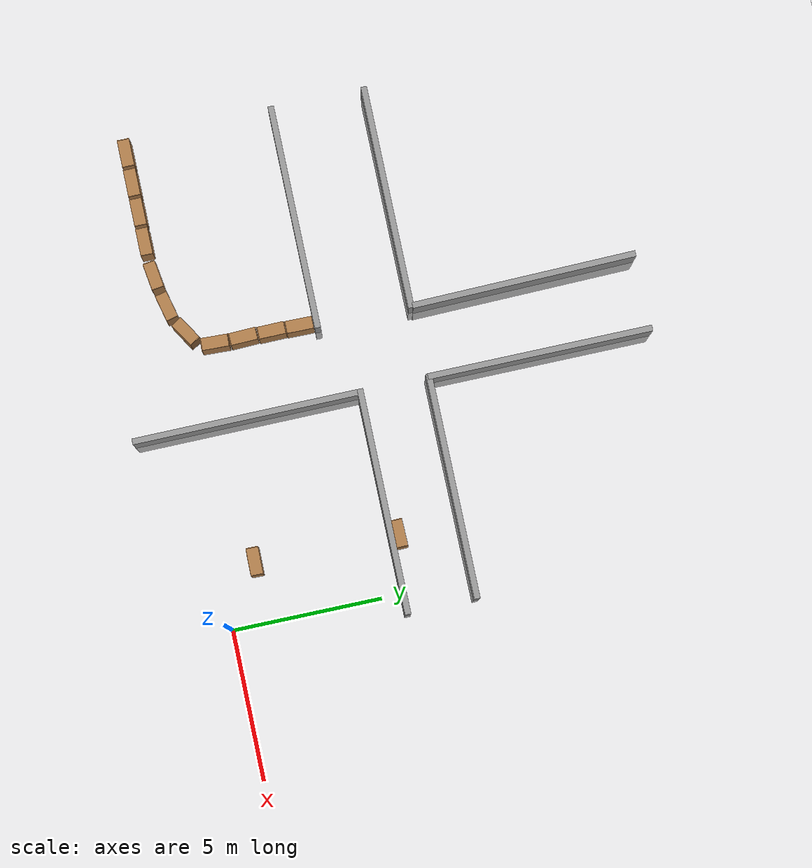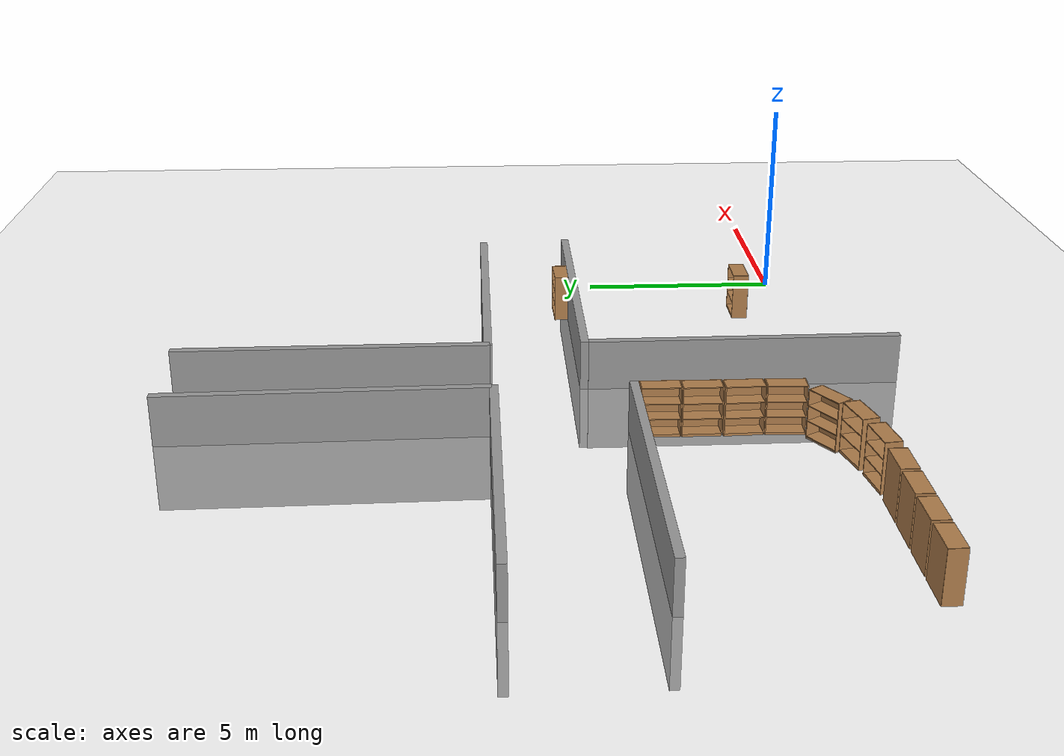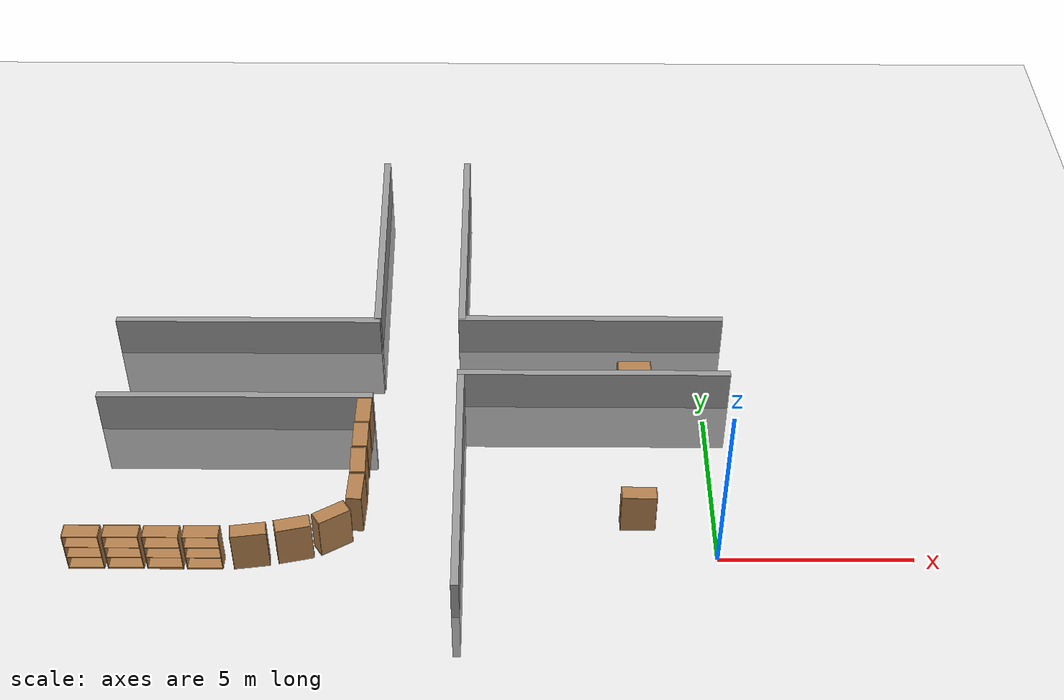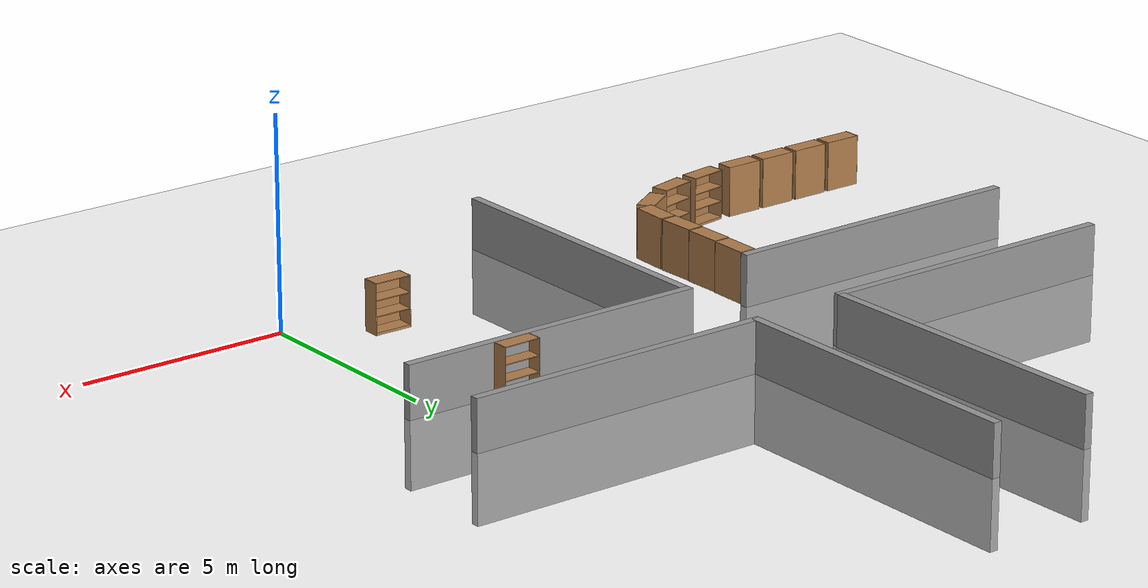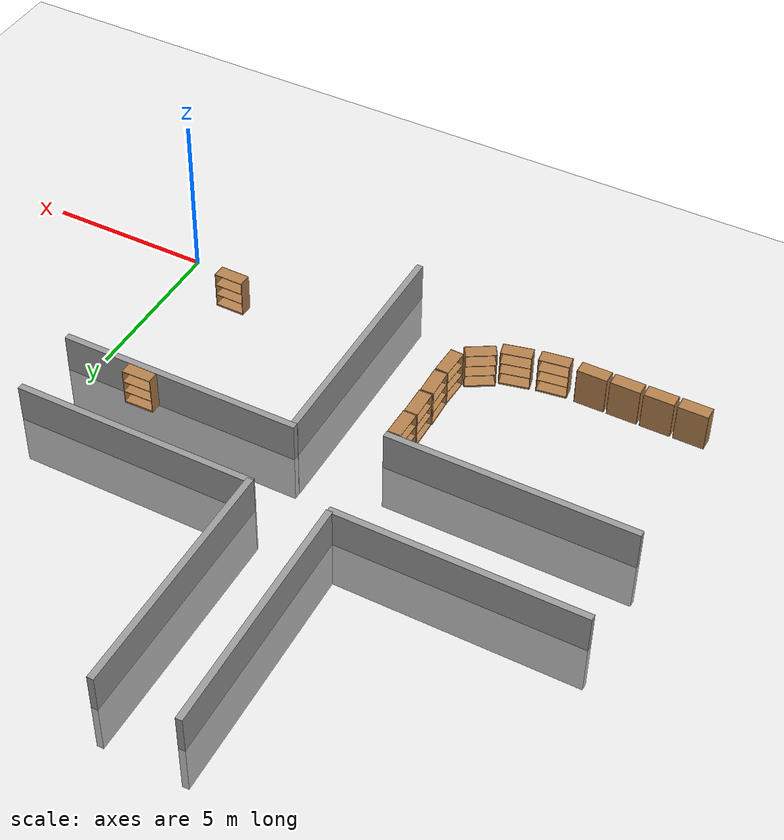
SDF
<sdf version="1.4">
 <world name="default">
  <model name="ground_plane">
   <static>1</static>
   <link name="link">
    <collision name="collision">
     <geometry><plane><normal>0 0 1</normal><size>100 100</size></plane></geometry>
     <surface><friction><ode><mu>100</mu><mu2>50</mu2></ode></friction></surface>
    </collision>
    <visual name="visual">
     <cast_shadows>0</cast_shadows>
     <geometry><plane><normal>0 0 1</normal><size>100 100</size></plane></geometry>
     <material>
      <script><uri>file://media/materials/scripts/gazebo.material</uri><name>Gazebo/Grey</name></script>
     </material>
    </visual>
    <velocity_decay><linear>0</linear><angular>0</angular></velocity_decay>
   </link>
  </model>
  <model name="bookshelf_10">
   <static>1</static>
   <link name="link">
    <inertial><mass>1</mass></inertial>
    <collision name="back">
     <pose>0 0.005 0.6 0 -0 0</pose>
     <geometry><box><size>0.9 0.01 1.2</size></box></geometry>
    </collision>
    <visual name="visual1">
     <pose>0 0.005 0.6 0 -0 0</pose>
     <geometry><box><size>0.9 0.01 1.2</size></box></geometry>
     <material>
      <script><uri>file://media/materials/scripts/gazebo.material</uri><name>Gazebo/Wood</name></script>
     </material>
    </visual>
    <collision name="left_side">
     <pose>0.45 -0.195 0.6 0 -0 0</pose>
     <geometry><box><size>0.02 0.4 1.2</size></box></geometry>
    </collision>
    <visual name="visual2">
     <pose>0.45 -0.195 0.6 0 -0 0</pose>
     <geometry><box><size>0.02 0.4 1.2</size></box></geometry>
     <material>
      <script><uri>file://media/materials/scripts/gazebo.material</uri><name>Gazebo/Wood</name></script>
     </material>
    </visual>
    <collision name="right_side">
     <pose>-0.45 -0.195 0.6 0 -0 0</pose>
     <geometry><box><size>0.02 0.4 1.2</size></box></geometry>
    </collision>
    <visual name="visual3">
     <pose>-0.45 -0.195 0.6 0 -0 0</pose>
     <geometry><box><size>0.02 0.4 1.2</size></box></geometry>
     <material>
      <script><uri>file://media/materials/scripts/gazebo.material</uri><name>Gazebo/Wood</name></script>
     </material>
    </visual>
    <collision name="bottom">
     <pose>0 -0.195 0.03 0 -0 0</pose>
     <geometry><box><size>0.88 0.4 0.06</size></box></geometry>
    </collision>
    <visual name="visual4">
     <pose>0 -0.195 0.03 0 -0 0</pose>
     <geometry><box><size>0.88 0.4 0.06</size></box></geometry>
     <material>
      <script><uri>file://media/materials/scripts/gazebo.material</uri><name>Gazebo/Wood</name></script>
     </material>
    </visual>
    <collision name="top">
     <pose>0 -0.195 1.19 0 -0 0</pose>
     <geometry><box><size>0.88 0.4 0.02</size></box></geometry>
    </collision>
    <visual name="visual5">
     <pose>0 -0.195 1.19 0 -0 0</pose>
     <geometry><box><size>0.88 0.4 0.02</size></box></geometry>
     <material>
      <script><uri>file://media/materials/scripts/gazebo.material</uri><name>Gazebo/Wood</name></script>
     </material>
    </visual>
    <collision name="low_shelf">
     <pose>0 -0.195 0.43 0 -0 0</pose>
     <geometry><box><size>0.88 0.4 0.02</size></box></geometry>
    </collision>
    <visual name="visual6">
     <pose>0 -0.195 0.43 0 -0 0</pose>
     <geometry><box><size>0.88 0.4 0.02</size></box></geometry>
     <material>
      <script><uri>file://media/materials/scripts/gazebo.material</uri><name>Gazebo/Wood</name></script>
     </material>
    </visual>
    <collision name="high_shelf">
     <pose>0 -0.195 0.8 0 -0 0</pose>
     <geometry><box><size>0.88 0.4 0.02</size></box></geometry>
    </collision>
    <visual name="visual7">
     <pose>0 -0.195 0.8 0 -0 0</pose>
     <geometry><box><size>0.88 0.4 0.02</size></box></geometry>
     <material>
      <script><uri>file://media/materials/scripts/gazebo.material</uri><name>Gazebo/Wood</name></script>
     </material>
    </visual>
    <velocity_decay><linear>0</linear><angular>0</angular></velocity_decay>
   </link>
   <pose>-2 1 0 0 -0 3.12895</pose>
  </model>
  <model name="bookshelf_22">
   <static>1</static>
   <link name="link">
    <inertial><mass>1</mass></inertial>
    <collision name="back">
     <pose>0 0.005 0.6 0 -0 0</pose>
     <geometry><box><size>0.9 0.01 1.2</size></box></geometry>
    </collision>
    <visual name="visual1">
     <pose>0 0.005 0.6 0 -0 0</pose>
     <geometry><box><size>0.9 0.01 1.2</size></box></geometry>
     <material>
      <script><uri>file://media/materials/scripts/gazebo.material</uri><name>Gazebo/Wood</name></script>
     </material>
    </visual>
    <collision name="left_side">
     <pose>0.45 -0.195 0.6 0 -0 0</pose>
     <geometry><box><size>0.02 0.4 1.2</size></box></geometry>
    </collision>
    <visual name="visual2">
     <pose>0.45 -0.195 0.6 0 -0 0</pose>
     <geometry><box><size>0.02 0.4 1.2</size></box></geometry>
     <material>
      <script><uri>file://media/materials/scripts/gazebo.material</uri><name>Gazebo/Wood</name></script>
     </material>
    </visual>
    <collision name="right_side">
     <pose>-0.45 -0.195 0.6 0 -0 0</pose>
     <geometry><box><size>0.02 0.4 1.2</size></box></geometry>
    </collision>
    <visual name="visual3">
     <pose>-0.45 -0.195 0.6 0 -0 0</pose>
     <geometry><box><size>0.02 0.4 1.2</size></box></geometry>
     <material>
      <script><uri>file://media/materials/scripts/gazebo.material</uri><name>Gazebo/Wood</name></script>
     </material>
    </visual>
    <collision name="bottom">
     <pose>0 -0.195 0.03 0 -0 0</pose>
     <geometry><box><size>0.88 0.4 0.06</size></box></geometry>
    </collision>
    <visual name="visual4">
     <pose>0 -0.195 0.03 0 -0 0</pose>
     <geometry><box><size>0.88 0.4 0.06</size></box></geometry>
     <material>
      <script><uri>file://media/materials/scripts/gazebo.material</uri><name>Gazebo/Wood</name></script>
     </material>
    </visual>
    <collision name="top">
     <pose>0 -0.195 1.19 0 -0 0</pose>
     <geometry><box><size>0.88 0.4 0.02</size></box></geometry>
    </collision>
    <visual name="visual5">
     <pose>0 -0.195 1.19 0 -0 0</pose>
     <geometry><box><size>0.88 0.4 0.02</size></box></geometry>
     <material>
      <script><uri>file://media/materials/scripts/gazebo.material</uri><name>Gazebo/Wood</name></script>
     </material>
    </visual>
    <collision name="low_shelf">
     <pose>0 -0.195 0.43 0 -0 0</pose>
     <geometry><box><size>0.88 0.4 0.02</size></box></geometry>
    </collision>
    <visual name="visual6">
     <pose>0 -0.195 0.43 0 -0 0</pose>
     <geometry><box><size>0.88 0.4 0.02</size></box></geometry>
     <material>
      <script><uri>file://media/materials/scripts/gazebo.material</uri><name>Gazebo/Wood</name></script>
     </material>
    </visual>
    <collision name="high_shelf">
     <pose>0 -0.195 0.8 0 -0 0</pose>
     <geometry><box><size>0.88 0.4 0.02</size></box></geometry>
    </collision>
    <visual name="visual7">
     <pose>0 -0.195 0.8 0 -0 0</pose>
     <geometry><box><size>0.88 0.4 0.02</size></box></geometry>
     <material>
      <script><uri>file://media/materials/scripts/gazebo.material</uri><name>Gazebo/Wood</name></script>
     </material>
    </visual>
    <velocity_decay><linear>0</linear><angular>0</angular></velocity_decay>
   </link>
   <pose>-1.90221 5.76764 0 0 0 -3.12007</pose>
  </model>
  <model name="bookshelf_23">
   <static>1</static>
   <link name="link">
    <inertial><mass>1</mass></inertial>
    <collision name="back">
     <pose>0 0.005 0.6 0 -0 0</pose>
     <geometry><box><size>0.9 0.01 1.2</size></box></geometry>
    </collision>
    <visual name="visual1">
     <pose>0 0.005 0.6 0 -0 0</pose>
     <geometry><box><size>0.9 0.01 1.2</size></box></geometry>
     <material>
      <script><uri>file://media/materials/scripts/gazebo.material</uri><name>Gazebo/Wood</name></script>
     </material>
    </visual>
    <collision name="left_side">
     <pose>0.45 -0.195 0.6 0 -0 0</pose>
     <geometry><box><size>0.02 0.4 1.2</size></box></geometry>
    </collision>
    <visual name="visual2">
     <pose>0.45 -0.195 0.6 0 -0 0</pose>
     <geometry><box><size>0.02 0.4 1.2</size></box></geometry>
     <material>
      <script><uri>file://media/materials/scripts/gazebo.material</uri><name>Gazebo/Wood</name></script>
     </material>
    </visual>
    <collision name="right_side">
     <pose>-0.45 -0.195 0.6 0 -0 0</pose>
     <geometry><box><size>0.02 0.4 1.2</size></box></geometry>
    </collision>
    <visual name="visual3">
     <pose>-0.45 -0.195 0.6 0 -0 0</pose>
     <geometry><box><size>0.02 0.4 1.2</size></box></geometry>
     <material>
      <script><uri>file://media/materials/scripts/gazebo.material</uri><name>Gazebo/Wood</name></script>
     </material>
    </visual>
    <collision name="bottom">
     <pose>0 -0.195 0.03 0 -0 0</pose>
     <geometry><box><size>0.88 0.4 0.06</size></box></geometry>
    </collision>
    <visual name="visual4">
     <pose>0 -0.195 0.03 0 -0 0</pose>
     <geometry><box><size>0.88 0.4 0.06</size></box></geometry>
     <material>
      <script><uri>file://media/materials/scripts/gazebo.material</uri><name>Gazebo/Wood</name></script>
     </material>
    </visual>
    <collision name="top">
     <pose>0 -0.195 1.19 0 -0 0</pose>
     <geometry><box><size>0.88 0.4 0.02</size></box></geometry>
    </collision>
    <visual name="visual5">
     <pose>0 -0.195 1.19 0 -0 0</pose>
     <geometry><box><size>0.88 0.4 0.02</size></box></geometry>
     <material>
      <script><uri>file://media/materials/scripts/gazebo.material</uri><name>Gazebo/Wood</name></script>
     </material>
    </visual>
    <collision name="low_shelf">
     <pose>0 -0.195 0.43 0 -0 0</pose>
     <geometry><box><size>0.88 0.4 0.02</size></box></geometry>
    </collision>
    <visual name="visual6">
     <pose>0 -0.195 0.43 0 -0 0</pose>
     <geometry><box><size>0.88 0.4 0.02</size></box></geometry>
     <material>
      <script><uri>file://media/materials/scripts/gazebo.material</uri><name>Gazebo/Wood</name></script>
     </material>
    </visual>
    <collision name="high_shelf">
     <pose>0 -0.195 0.8 0 -0 0</pose>
     <geometry><box><size>0.88 0.4 0.02</size></box></geometry>
    </collision>
    <visual name="visual7">
     <pose>0 -0.195 0.8 0 -0 0</pose>
     <geometry><box><size>0.88 0.4 0.02</size></box></geometry>
     <material>
      <script><uri>file://media/materials/scripts/gazebo.material</uri><name>Gazebo/Wood</name></script>
     </material>
    </visual>
    <velocity_decay><linear>0</linear><angular>0</angular></velocity_decay>
   </link>
   <pose>-16 0 0 0 -0 0</pose>
  </model>
  <model name="bookshelf_24">
   <static>1</static>
   <link name="link">
    <inertial><mass>1</mass></inertial>
    <collision name="back">
     <pose>0 0.005 0.6 0 -0 0</pose>
     <geometry><box><size>0.9 0.01 1.2</size></box></geometry>
    </collision>
    <visual name="visual1">
     <pose>0 0.005 0.6 0 -0 0</pose>
     <geometry><box><size>0.9 0.01 1.2</size></box></geometry>
     <material>
      <script><uri>file://media/materials/scripts/gazebo.material</uri><name>Gazebo/Wood</name></script>
     </material>
    </visual>
    <collision name="left_side">
     <pose>0.45 -0.195 0.6 0 -0 0</pose>
     <geometry><box><size>0.02 0.4 1.2</size></box></geometry>
    </collision>
    <visual name="visual2">
     <pose>0.45 -0.195 0.6 0 -0 0</pose>
     <geometry><box><size>0.02 0.4 1.2</size></box></geometry>
     <material>
      <script><uri>file://media/materials/scripts/gazebo.material</uri><name>Gazebo/Wood</name></script>
     </material>
    </visual>
    <collision name="right_side">
     <pose>-0.45 -0.195 0.6 0 -0 0</pose>
     <geometry><box><size>0.02 0.4 1.2</size></box></geometry>
    </collision>
    <visual name="visual3">
     <pose>-0.45 -0.195 0.6 0 -0 0</pose>
     <geometry><box><size>0.02 0.4 1.2</size></box></geometry>
     <material>
      <script><uri>file://media/materials/scripts/gazebo.material</uri><name>Gazebo/Wood</name></script>
     </material>
    </visual>
    <collision name="bottom">
     <pose>0 -0.195 0.03 0 -0 0</pose>
     <geometry><box><size>0.88 0.4 0.06</size></box></geometry>
    </collision>
    <visual name="visual4">
     <pose>0 -0.195 0.03 0 -0 0</pose>
     <geometry><box><size>0.88 0.4 0.06</size></box></geometry>
     <material>
      <script><uri>file://media/materials/scripts/gazebo.material</uri><name>Gazebo/Wood</name></script>
     </material>
    </visual>
    <collision name="top">
     <pose>0 -0.195 1.19 0 -0 0</pose>
     <geometry><box><size>0.88 0.4 0.02</size></box></geometry>
    </collision>
    <visual name="visual5">
     <pose>0 -0.195 1.19 0 -0 0</pose>
     <geometry><box><size>0.88 0.4 0.02</size></box></geometry>
     <material>
      <script><uri>file://media/materials/scripts/gazebo.material</uri><name>Gazebo/Wood</name></script>
     </material>
    </visual>
    <collision name="low_shelf">
     <pose>0 -0.195 0.43 0 -0 0</pose>
     <geometry><box><size>0.88 0.4 0.02</size></box></geometry>
    </collision>
    <visual name="visual6">
     <pose>0 -0.195 0.43 0 -0 0</pose>
     <geometry><box><size>0.88 0.4 0.02</size></box></geometry>
     <material>
      <script><uri>file://media/materials/scripts/gazebo.material</uri><name>Gazebo/Wood</name></script>
     </material>
    </visual>
    <collision name="high_shelf">
     <pose>0 -0.195 0.8 0 -0 0</pose>
     <geometry><box><size>0.88 0.4 0.02</size></box></geometry>
    </collision>
    <visual name="visual7">
     <pose>0 -0.195 0.8 0 -0 0</pose>
     <geometry><box><size>0.88 0.4 0.02</size></box></geometry>
     <material>
      <script><uri>file://media/materials/scripts/gazebo.material</uri><name>Gazebo/Wood</name></script>
     </material>
    </visual>
    <velocity_decay><linear>0</linear><angular>0</angular></velocity_decay>
   </link>
   <pose>-15 0 0 0 -0 0</pose>
  </model>
  <model name="bookshelf_25">
   <static>1</static>
   <link name="link">
    <inertial><mass>1</mass></inertial>
    <collision name="back">
     <pose>0 0.005 0.6 0 -0 0</pose>
     <geometry><box><size>0.9 0.01 1.2</size></box></geometry>
    </collision>
    <visual name="visual1">
     <pose>0 0.005 0.6 0 -0 0</pose>
     <geometry><box><size>0.9 0.01 1.2</size></box></geometry>
     <material>
      <script><uri>file://media/materials/scripts/gazebo.material</uri><name>Gazebo/Wood</name></script>
     </material>
    </visual>
    <collision name="left_side">
     <pose>0.45 -0.195 0.6 0 -0 0</pose>
     <geometry><box><size>0.02 0.4 1.2</size></box></geometry>
    </collision>
    <visual name="visual2">
     <pose>0.45 -0.195 0.6 0 -0 0</pose>
     <geometry><box><size>0.02 0.4 1.2</size></box></geometry>
     <material>
      <script><uri>file://media/materials/scripts/gazebo.material</uri><name>Gazebo/Wood</name></script>
     </material>
    </visual>
    <collision name="right_side">
     <pose>-0.45 -0.195 0.6 0 -0 0</pose>
     <geometry><box><size>0.02 0.4 1.2</size></box></geometry>
    </collision>
    <visual name="visual3">
     <pose>-0.45 -0.195 0.6 0 -0 0</pose>
     <geometry><box><size>0.02 0.4 1.2</size></box></geometry>
     <material>
      <script><uri>file://media/materials/scripts/gazebo.material</uri><name>Gazebo/Wood</name></script>
     </material>
    </visual>
    <collision name="bottom">
     <pose>0 -0.195 0.03 0 -0 0</pose>
     <geometry><box><size>0.88 0.4 0.06</size></box></geometry>
    </collision>
    <visual name="visual4">
     <pose>0 -0.195 0.03 0 -0 0</pose>
     <geometry><box><size>0.88 0.4 0.06</size></box></geometry>
     <material>
      <script><uri>file://media/materials/scripts/gazebo.material</uri><name>Gazebo/Wood</name></script>
     </material>
    </visual>
    <collision name="top">
     <pose>0 -0.195 1.19 0 -0 0</pose>
     <geometry><box><size>0.88 0.4 0.02</size></box></geometry>
    </collision>
    <visual name="visual5">
     <pose>0 -0.195 1.19 0 -0 0</pose>
     <geometry><box><size>0.88 0.4 0.02</size></box></geometry>
     <material>
      <script><uri>file://media/materials/scripts/gazebo.material</uri><name>Gazebo/Wood</name></script>
     </material>
    </visual>
    <collision name="low_shelf">
     <pose>0 -0.195 0.43 0 -0 0</pose>
     <geometry><box><size>0.88 0.4 0.02</size></box></geometry>
    </collision>
    <visual name="visual6">
     <pose>0 -0.195 0.43 0 -0 0</pose>
     <geometry><box><size>0.88 0.4 0.02</size></box></geometry>
     <material>
      <script><uri>file://media/materials/scripts/gazebo.material</uri><name>Gazebo/Wood</name></script>
     </material>
    </visual>
    <collision name="high_shelf">
     <pose>0 -0.195 0.8 0 -0 0</pose>
     <geometry><box><size>0.88 0.4 0.02</size></box></geometry>
    </collision>
    <visual name="visual7">
     <pose>0 -0.195 0.8 0 -0 0</pose>
     <geometry><box><size>0.88 0.4 0.02</size></box></geometry>
     <material>
      <script><uri>file://media/materials/scripts/gazebo.material</uri><name>Gazebo/Wood</name></script>
     </material>
    </visual>
    <velocity_decay><linear>0</linear><angular>0</angular></velocity_decay>
   </link>
   <pose>-14 0 0 0 -0 0</pose>
  </model>
  <model name="bookshelf_26">
   <static>1</static>
   <link name="link">
    <inertial><mass>1</mass></inertial>
    <collision name="back">
     <pose>0 0.005 0.6 0 -0 0</pose>
     <geometry><box><size>0.9 0.01 1.2</size></box></geometry>
    </collision>
    <visual name="visual1">
     <pose>0 0.005 0.6 0 -0 0</pose>
     <geometry><box><size>0.9 0.01 1.2</size></box></geometry>
     <material>
      <script><uri>file://media/materials/scripts/gazebo.material</uri><name>Gazebo/Wood</name></script>
     </material>
    </visual>
    <collision name="left_side">
     <pose>0.45 -0.195 0.6 0 -0 0</pose>
     <geometry><box><size>0.02 0.4 1.2</size></box></geometry>
    </collision>
    <visual name="visual2">
     <pose>0.45 -0.195 0.6 0 -0 0</pose>
     <geometry><box><size>0.02 0.4 1.2</size></box></geometry>
     <material>
      <script><uri>file://media/materials/scripts/gazebo.material</uri><name>Gazebo/Wood</name></script>
     </material>
    </visual>
    <collision name="right_side">
     <pose>-0.45 -0.195 0.6 0 -0 0</pose>
     <geometry><box><size>0.02 0.4 1.2</size></box></geometry>
    </collision>
    <visual name="visual3">
     <pose>-0.45 -0.195 0.6 0 -0 0</pose>
     <geometry><box><size>0.02 0.4 1.2</size></box></geometry>
     <material>
      <script><uri>file://media/materials/scripts/gazebo.material</uri><name>Gazebo/Wood</name></script>
     </material>
    </visual>
    <collision name="bottom">
     <pose>0 -0.195 0.03 0 -0 0</pose>
     <geometry><box><size>0.88 0.4 0.06</size></box></geometry>
    </collision>
    <visual name="visual4">
     <pose>0 -0.195 0.03 0 -0 0</pose>
     <geometry><box><size>0.88 0.4 0.06</size></box></geometry>
     <material>
      <script><uri>file://media/materials/scripts/gazebo.material</uri><name>Gazebo/Wood</name></script>
     </material>
    </visual>
    <collision name="top">
     <pose>0 -0.195 1.19 0 -0 0</pose>
     <geometry><box><size>0.88 0.4 0.02</size></box></geometry>
    </collision>
    <visual name="visual5">
     <pose>0 -0.195 1.19 0 -0 0</pose>
     <geometry><box><size>0.88 0.4 0.02</size></box></geometry>
     <material>
      <script><uri>file://media/materials/scripts/gazebo.material</uri><name>Gazebo/Wood</name></script>
     </material>
    </visual>
    <collision name="low_shelf">
     <pose>0 -0.195 0.43 0 -0 0</pose>
     <geometry><box><size>0.88 0.4 0.02</size></box></geometry>
    </collision>
    <visual name="visual6">
     <pose>0 -0.195 0.43 0 -0 0</pose>
     <geometry><box><size>0.88 0.4 0.02</size></box></geometry>
     <material>
      <script><uri>file://media/materials/scripts/gazebo.material</uri><name>Gazebo/Wood</name></script>
     </material>
    </visual>
    <collision name="high_shelf">
     <pose>0 -0.195 0.8 0 -0 0</pose>
     <geometry><box><size>0.88 0.4 0.02</size></box></geometry>
    </collision>
    <visual name="visual7">
     <pose>0 -0.195 0.8 0 -0 0</pose>
     <geometry><box><size>0.88 0.4 0.02</size></box></geometry>
     <material>
      <script><uri>file://media/materials/scripts/gazebo.material</uri><name>Gazebo/Wood</name></script>
     </material>
    </visual>
    <velocity_decay><linear>0</linear><angular>0</angular></velocity_decay>
   </link>
   <pose>-13 0 0 0 -0 0</pose>
  </model>
  <model name="grey_wall_4">
   <static>1</static>
   <link name="link">
    <pose>0 0 1.4 0 -0 0</pose>
    <collision name="collision"><geometry><box><size>7.5 0.2 2.8</size></box></geometry></collision>
    <visual name="visual">
     <cast_shadows>0</cast_shadows>
     <geometry><box><size>7.5 0.2 2.8</size></box></geometry>
     <material>
      <script>
       <uri>model://grey_wall/materials/scripts</uri>
       <uri>model://grey_wall/materials/textures</uri>
       <name>vrc/grey_wall</name>
      </script>
     </material>
    </visual>
    <velocity_decay><linear>0</linear><angular>0</angular></velocity_decay>
   </link>
   <pose>-12.7778 4.77648 -1.60115 0 -0 0</pose>
  </model>
  <model name="grey_wall_5">
   <static>1</static>
   <link name="link">
    <pose>0 0 1.4 0 -0 0</pose>
    <collision name="collision"><geometry><box><size>7.5 0.2 2.8</size></box></geometry></collision>
    <visual name="visual">
     <cast_shadows>0</cast_shadows>
     <geometry><box><size>7.5 0.2 2.8</size></box></geometry>
     <material>
      <script>
       <uri>model://grey_wall/materials/scripts</uri>
       <uri>model://grey_wall/materials/textures</uri>
       <name>vrc/grey_wall</name>
      </script>
     </material>
    </visual>
    <velocity_decay><linear>0</linear><angular>0</angular></velocity_decay>
   </link>
   <pose>-12.7843 7.90242 -1.62719 0 -0 0</pose>
  </model>
  <model name="bookshelf_28">
   <static>1</static>
   <link name="link">
    <inertial><mass>1</mass></inertial>
    <collision name="back">
     <pose>0 0.005 0.6 0 -0 0</pose>
     <geometry><box><size>0.9 0.01 1.2</size></box></geometry>
    </collision>
    <visual name="visual1">
     <pose>0 0.005 0.6 0 -0 0</pose>
     <geometry><box><size>0.9 0.01 1.2</size></box></geometry>
     <material>
      <script><uri>file://media/materials/scripts/gazebo.material</uri><name>Gazebo/Wood</name></script>
     </material>
    </visual>
    <collision name="left_side">
     <pose>0.45 -0.195 0.6 0 -0 0</pose>
     <geometry><box><size>0.02 0.4 1.2</size></box></geometry>
    </collision>
    <visual name="visual2">
     <pose>0.45 -0.195 0.6 0 -0 0</pose>
     <geometry><box><size>0.02 0.4 1.2</size></box></geometry>
     <material>
      <script><uri>file://media/materials/scripts/gazebo.material</uri><name>Gazebo/Wood</name></script>
     </material>
    </visual>
    <collision name="right_side">
     <pose>-0.45 -0.195 0.6 0 -0 0</pose>
     <geometry><box><size>0.02 0.4 1.2</size></box></geometry>
    </collision>
    <visual name="visual3">
     <pose>-0.45 -0.195 0.6 0 -0 0</pose>
     <geometry><box><size>0.02 0.4 1.2</size></box></geometry>
     <material>
      <script><uri>file://media/materials/scripts/gazebo.material</uri><name>Gazebo/Wood</name></script>
     </material>
    </visual>
    <collision name="bottom">
     <pose>0 -0.195 0.03 0 -0 0</pose>
     <geometry><box><size>0.88 0.4 0.06</size></box></geometry>
    </collision>
    <visual name="visual4">
     <pose>0 -0.195 0.03 0 -0 0</pose>
     <geometry><box><size>0.88 0.4 0.06</size></box></geometry>
     <material>
      <script><uri>file://media/materials/scripts/gazebo.material</uri><name>Gazebo/Wood</name></script>
     </material>
    </visual>
    <collision name="top">
     <pose>0 -0.195 1.19 0 -0 0</pose>
     <geometry><box><size>0.88 0.4 0.02</size></box></geometry>
    </collision>
    <visual name="visual5">
     <pose>0 -0.195 1.19 0 -0 0</pose>
     <geometry><box><size>0.88 0.4 0.02</size></box></geometry>
     <material>
      <script><uri>file://media/materials/scripts/gazebo.material</uri><name>Gazebo/Wood</name></script>
     </material>
    </visual>
    <collision name="low_shelf">
     <pose>0 -0.195 0.43 0 -0 0</pose>
     <geometry><box><size>0.88 0.4 0.02</size></box></geometry>
    </collision>
    <visual name="visual6">
     <pose>0 -0.195 0.43 0 -0 0</pose>
     <geometry><box><size>0.88 0.4 0.02</size></box></geometry>
     <material>
      <script><uri>file://media/materials/scripts/gazebo.material</uri><name>Gazebo/Wood</name></script>
     </material>
    </visual>
    <collision name="high_shelf">
     <pose>0 -0.195 0.8 0 -0 0</pose>
     <geometry><box><size>0.88 0.4 0.02</size></box></geometry>
    </collision>
    <visual name="visual7">
     <pose>0 -0.195 0.8 0 -0 0</pose>
     <geometry><box><size>0.88 0.4 0.02</size></box></geometry>
     <material>
      <script><uri>file://media/materials/scripts/gazebo.material</uri><name>Gazebo/Wood</name></script>
     </material>
    </visual>
    <velocity_decay><linear>0</linear><angular>0</angular></velocity_decay>
   </link>
   <pose>-9.05367 4.20292 0 0 0 -1.57791</pose>
  </model>
  <model name="bookshelf_37">
   <static>1</static>
   <link name="link">
    <inertial><mass>1</mass></inertial>
    <collision name="back">
     <pose>0 0.005 0.6 0 -0 0</pose>
     <geometry><box><size>0.9 0.01 1.2</size></box></geometry>
    </collision>
    <visual name="visual1">
     <pose>0 0.005 0.6 0 -0 0</pose>
     <geometry><box><size>0.9 0.01 1.2</size></box></geometry>
     <material>
      <script><uri>file://media/materials/scripts/gazebo.material</uri><name>Gazebo/Wood</name></script>
     </material>
    </visual>
    <collision name="left_side">
     <pose>0.45 -0.195 0.6 0 -0 0</pose>
     <geometry><box><size>0.02 0.4 1.2</size></box></geometry>
    </collision>
    <visual name="visual2">
     <pose>0.45 -0.195 0.6 0 -0 0</pose>
     <geometry><box><size>0.02 0.4 1.2</size></box></geometry>
     <material>
      <script><uri>file://media/materials/scripts/gazebo.material</uri><name>Gazebo/Wood</name></script>
     </material>
    </visual>
    <collision name="right_side">
     <pose>-0.45 -0.195 0.6 0 -0 0</pose>
     <geometry><box><size>0.02 0.4 1.2</size></box></geometry>
    </collision>
    <visual name="visual3">
     <pose>-0.45 -0.195 0.6 0 -0 0</pose>
     <geometry><box><size>0.02 0.4 1.2</size></box></geometry>
     <material>
      <script><uri>file://media/materials/scripts/gazebo.material</uri><name>Gazebo/Wood</name></script>
     </material>
    </visual>
    <collision name="bottom">
     <pose>0 -0.195 0.03 0 -0 0</pose>
     <geometry><box><size>0.88 0.4 0.06</size></box></geometry>
    </collision>
    <visual name="visual4">
     <pose>0 -0.195 0.03 0 -0 0</pose>
     <geometry><box><size>0.88 0.4 0.06</size></box></geometry>
     <material>
      <script><uri>file://media/materials/scripts/gazebo.material</uri><name>Gazebo/Wood</name></script>
     </material>
    </visual>
    <collision name="top">
     <pose>0 -0.195 1.19 0 -0 0</pose>
     <geometry><box><size>0.88 0.4 0.02</size></box></geometry>
    </collision>
    <visual name="visual5">
     <pose>0 -0.195 1.19 0 -0 0</pose>
     <geometry><box><size>0.88 0.4 0.02</size></box></geometry>
     <material>
      <script><uri>file://media/materials/scripts/gazebo.material</uri><name>Gazebo/Wood</name></script>
     </material>
    </visual>
    <collision name="low_shelf">
     <pose>0 -0.195 0.43 0 -0 0</pose>
     <geometry><box><size>0.88 0.4 0.02</size></box></geometry>
    </collision>
    <visual name="visual6">
     <pose>0 -0.195 0.43 0 -0 0</pose>
     <geometry><box><size>0.88 0.4 0.02</size></box></geometry>
     <material>
      <script><uri>file://media/materials/scripts/gazebo.material</uri><name>Gazebo/Wood</name></script>
     </material>
    </visual>
    <collision name="high_shelf">
     <pose>0 -0.195 0.8 0 -0 0</pose>
     <geometry><box><size>0.88 0.4 0.02</size></box></geometry>
    </collision>
    <visual name="visual7">
     <pose>0 -0.195 0.8 0 -0 0</pose>
     <geometry><box><size>0.88 0.4 0.02</size></box></geometry>
     <material>
      <script><uri>file://media/materials/scripts/gazebo.material</uri><name>Gazebo/Wood</name></script>
     </material>
    </visual>
    <velocity_decay><linear>0</linear><angular>0</angular></velocity_decay>
   </link>
   <pose>-9.06617 2.34146 0 0 0 -1.5366</pose>
  </model>
  <model name="bookshelf_38">
   <static>1</static>
   <link name="link">
    <inertial><mass>1</mass></inertial>
    <collision name="back">
     <pose>0 0.005 0.6 0 -0 0</pose>
     <geometry><box><size>0.9 0.01 1.2</size></box></geometry>
    </collision>
    <visual name="visual1">
     <pose>0 0.005 0.6 0 -0 0</pose>
     <geometry><box><size>0.9 0.01 1.2</size></box></geometry>
     <material>
      <script><uri>file://media/materials/scripts/gazebo.material</uri><name>Gazebo/Wood</name></script>
     </material>
    </visual>
    <collision name="left_side">
     <pose>0.45 -0.195 0.6 0 -0 0</pose>
     <geometry><box><size>0.02 0.4 1.2</size></box></geometry>
    </collision>
    <visual name="visual2">
     <pose>0.45 -0.195 0.6 0 -0 0</pose>
     <geometry><box><size>0.02 0.4 1.2</size></box></geometry>
     <material>
      <script><uri>file://media/materials/scripts/gazebo.material</uri><name>Gazebo/Wood</name></script>
     </material>
    </visual>
    <collision name="right_side">
     <pose>-0.45 -0.195 0.6 0 -0 0</pose>
     <geometry><box><size>0.02 0.4 1.2</size></box></geometry>
    </collision>
    <visual name="visual3">
     <pose>-0.45 -0.195 0.6 0 -0 0</pose>
     <geometry><box><size>0.02 0.4 1.2</size></box></geometry>
     <material>
      <script><uri>file://media/materials/scripts/gazebo.material</uri><name>Gazebo/Wood</name></script>
     </material>
    </visual>
    <collision name="bottom">
     <pose>0 -0.195 0.03 0 -0 0</pose>
     <geometry><box><size>0.88 0.4 0.06</size></box></geometry>
    </collision>
    <visual name="visual4">
     <pose>0 -0.195 0.03 0 -0 0</pose>
     <geometry><box><size>0.88 0.4 0.06</size></box></geometry>
     <material>
      <script><uri>file://media/materials/scripts/gazebo.material</uri><name>Gazebo/Wood</name></script>
     </material>
    </visual>
    <collision name="top">
     <pose>0 -0.195 1.19 0 -0 0</pose>
     <geometry><box><size>0.88 0.4 0.02</size></box></geometry>
    </collision>
    <visual name="visual5">
     <pose>0 -0.195 1.19 0 -0 0</pose>
     <geometry><box><size>0.88 0.4 0.02</size></box></geometry>
     <material>
      <script><uri>file://media/materials/scripts/gazebo.material</uri><name>Gazebo/Wood</name></script>
     </material>
    </visual>
    <collision name="low_shelf">
     <pose>0 -0.195 0.43 0 -0 0</pose>
     <geometry><box><size>0.88 0.4 0.02</size></box></geometry>
    </collision>
    <visual name="visual6">
     <pose>0 -0.195 0.43 0 -0 0</pose>
     <geometry><box><size>0.88 0.4 0.02</size></box></geometry>
     <material>
      <script><uri>file://media/materials/scripts/gazebo.material</uri><name>Gazebo/Wood</name></script>
     </material>
    </visual>
    <collision name="high_shelf">
     <pose>0 -0.195 0.8 0 -0 0</pose>
     <geometry><box><size>0.88 0.4 0.02</size></box></geometry>
    </collision>
    <visual name="visual7">
     <pose>0 -0.195 0.8 0 -0 0</pose>
     <geometry><box><size>0.88 0.4 0.02</size></box></geometry>
     <material>
      <script><uri>file://media/materials/scripts/gazebo.material</uri><name>Gazebo/Wood</name></script>
     </material>
    </visual>
    <velocity_decay><linear>0</linear><angular>0</angular></velocity_decay>
   </link>
   <pose>-10.7085 -0.097495 0 0 0 -2.90883</pose>
  </model>
  <model name="bookshelf_39">
   <static>1</static>
   <link name="link">
    <inertial><mass>1</mass></inertial>
    <collision name="back">
     <pose>0 0.005 0.6 0 -0 0</pose>
     <geometry><box><size>0.9 0.01 1.2</size></box></geometry>
    </collision>
    <visual name="visual1">
     <pose>0 0.005 0.6 0 -0 0</pose>
     <geometry><box><size>0.9 0.01 1.2</size></box></geometry>
     <material>
      <script><uri>file://media/materials/scripts/gazebo.material</uri><name>Gazebo/Wood</name></script>
     </material>
    </visual>
    <collision name="left_side">
     <pose>0.45 -0.195 0.6 0 -0 0</pose>
     <geometry><box><size>0.02 0.4 1.2</size></box></geometry>
    </collision>
    <visual name="visual2">
     <pose>0.45 -0.195 0.6 0 -0 0</pose>
     <geometry><box><size>0.02 0.4 1.2</size></box></geometry>
     <material>
      <script><uri>file://media/materials/scripts/gazebo.material</uri><name>Gazebo/Wood</name></script>
     </material>
    </visual>
    <collision name="right_side">
     <pose>-0.45 -0.195 0.6 0 -0 0</pose>
     <geometry><box><size>0.02 0.4 1.2</size></box></geometry>
    </collision>
    <visual name="visual3">
     <pose>-0.45 -0.195 0.6 0 -0 0</pose>
     <geometry><box><size>0.02 0.4 1.2</size></box></geometry>
     <material>
      <script><uri>file://media/materials/scripts/gazebo.material</uri><name>Gazebo/Wood</name></script>
     </material>
    </visual>
    <collision name="bottom">
     <pose>0 -0.195 0.03 0 -0 0</pose>
     <geometry><box><size>0.88 0.4 0.06</size></box></geometry>
    </collision>
    <visual name="visual4">
     <pose>0 -0.195 0.03 0 -0 0</pose>
     <geometry><box><size>0.88 0.4 0.06</size></box></geometry>
     <material>
      <script><uri>file://media/materials/scripts/gazebo.material</uri><name>Gazebo/Wood</name></script>
     </material>
    </visual>
    <collision name="top">
     <pose>0 -0.195 1.19 0 -0 0</pose>
     <geometry><box><size>0.88 0.4 0.02</size></box></geometry>
    </collision>
    <visual name="visual5">
     <pose>0 -0.195 1.19 0 -0 0</pose>
     <geometry><box><size>0.88 0.4 0.02</size></box></geometry>
     <material>
      <script><uri>file://media/materials/scripts/gazebo.material</uri><name>Gazebo/Wood</name></script>
     </material>
    </visual>
    <collision name="low_shelf">
     <pose>0 -0.195 0.43 0 -0 0</pose>
     <geometry><box><size>0.88 0.4 0.02</size></box></geometry>
    </collision>
    <visual name="visual6">
     <pose>0 -0.195 0.43 0 -0 0</pose>
     <geometry><box><size>0.88 0.4 0.02</size></box></geometry>
     <material>
      <script><uri>file://media/materials/scripts/gazebo.material</uri><name>Gazebo/Wood</name></script>
     </material>
    </visual>
    <collision name="high_shelf">
     <pose>0 -0.195 0.8 0 -0 0</pose>
     <geometry><box><size>0.88 0.4 0.02</size></box></geometry>
    </collision>
    <visual name="visual7">
     <pose>0 -0.195 0.8 0 -0 0</pose>
     <geometry><box><size>0.88 0.4 0.02</size></box></geometry>
     <material>
      <script><uri>file://media/materials/scripts/gazebo.material</uri><name>Gazebo/Wood</name></script>
     </material>
    </visual>
    <velocity_decay><linear>0</linear><angular>0</angular></velocity_decay>
   </link>
   <pose>-9.07028 1.38367 0 0 0 -1.60706</pose>
  </model>
  <model name="bookshelf_40">
   <static>1</static>
   <link name="link">
    <inertial><mass>1</mass></inertial>
    <collision name="back">
     <pose>0 0.005 0.6 0 -0 0</pose>
     <geometry><box><size>0.9 0.01 1.2</size></box></geometry>
    </collision>
    <visual name="visual1">
     <pose>0 0.005 0.6 0 -0 0</pose>
     <geometry><box><size>0.9 0.01 1.2</size></box></geometry>
     <material>
      <script><uri>file://media/materials/scripts/gazebo.material</uri><name>Gazebo/Wood</name></script>
     </material>
    </visual>
    <collision name="left_side">
     <pose>0.45 -0.195 0.6 0 -0 0</pose>
     <geometry><box><size>0.02 0.4 1.2</size></box></geometry>
    </collision>
    <visual name="visual2">
     <pose>0.45 -0.195 0.6 0 -0 0</pose>
     <geometry><box><size>0.02 0.4 1.2</size></box></geometry>
     <material>
      <script><uri>file://media/materials/scripts/gazebo.material</uri><name>Gazebo/Wood</name></script>
     </material>
    </visual>
    <collision name="right_side">
     <pose>-0.45 -0.195 0.6 0 -0 0</pose>
     <geometry><box><size>0.02 0.4 1.2</size></box></geometry>
    </collision>
    <visual name="visual3">
     <pose>-0.45 -0.195 0.6 0 -0 0</pose>
     <geometry><box><size>0.02 0.4 1.2</size></box></geometry>
     <material>
      <script><uri>file://media/materials/scripts/gazebo.material</uri><name>Gazebo/Wood</name></script>
     </material>
    </visual>
    <collision name="bottom">
     <pose>0 -0.195 0.03 0 -0 0</pose>
     <geometry><box><size>0.88 0.4 0.06</size></box></geometry>
    </collision>
    <visual name="visual4">
     <pose>0 -0.195 0.03 0 -0 0</pose>
     <geometry><box><size>0.88 0.4 0.06</size></box></geometry>
     <material>
      <script><uri>file://media/materials/scripts/gazebo.material</uri><name>Gazebo/Wood</name></script>
     </material>
    </visual>
    <collision name="top">
     <pose>0 -0.195 1.19 0 -0 0</pose>
     <geometry><box><size>0.88 0.4 0.02</size></box></geometry>
    </collision>
    <visual name="visual5">
     <pose>0 -0.195 1.19 0 -0 0</pose>
     <geometry><box><size>0.88 0.4 0.02</size></box></geometry>
     <material>
      <script><uri>file://media/materials/scripts/gazebo.material</uri><name>Gazebo/Wood</name></script>
     </material>
    </visual>
    <collision name="low_shelf">
     <pose>0 -0.195 0.43 0 -0 0</pose>
     <geometry><box><size>0.88 0.4 0.02</size></box></geometry>
    </collision>
    <visual name="visual6">
     <pose>0 -0.195 0.43 0 -0 0</pose>
     <geometry><box><size>0.88 0.4 0.02</size></box></geometry>
     <material>
      <script><uri>file://media/materials/scripts/gazebo.material</uri><name>Gazebo/Wood</name></script>
     </material>
    </visual>
    <collision name="high_shelf">
     <pose>0 -0.195 0.8 0 -0 0</pose>
     <geometry><box><size>0.88 0.4 0.02</size></box></geometry>
    </collision>
    <visual name="visual7">
     <pose>0 -0.195 0.8 0 -0 0</pose>
     <geometry><box><size>0.88 0.4 0.02</size></box></geometry>
     <material>
      <script><uri>file://media/materials/scripts/gazebo.material</uri><name>Gazebo/Wood</name></script>
     </material>
    </visual>
    <velocity_decay><linear>0</linear><angular>0</angular></velocity_decay>
   </link>
   <pose>-11.8114 -0.319652 0 0 0 -2.99851</pose>
  </model>
  <model name="bookshelf_41">
   <static>1</static>
   <link name="link">
    <inertial><mass>1</mass></inertial>
    <collision name="back">
     <pose>0 0.005 0.6 0 -0 0</pose>
     <geometry><box><size>0.9 0.01 1.2</size></box></geometry>
    </collision>
    <visual name="visual1">
     <pose>0 0.005 0.6 0 -0 0</pose>
     <geometry><box><size>0.9 0.01 1.2</size></box></geometry>
     <material>
      <script><uri>file://media/materials/scripts/gazebo.material</uri><name>Gazebo/Wood</name></script>
     </material>
    </visual>
    <collision name="left_side">
     <pose>0.45 -0.195 0.6 0 -0 0</pose>
     <geometry><box><size>0.02 0.4 1.2</size></box></geometry>
    </collision>
    <visual name="visual2">
     <pose>0.45 -0.195 0.6 0 -0 0</pose>
     <geometry><box><size>0.02 0.4 1.2</size></box></geometry>
     <material>
      <script><uri>file://media/materials/scripts/gazebo.material</uri><name>Gazebo/Wood</name></script>
     </material>
    </visual>
    <collision name="right_side">
     <pose>-0.45 -0.195 0.6 0 -0 0</pose>
     <geometry><box><size>0.02 0.4 1.2</size></box></geometry>
    </collision>
    <visual name="visual3">
     <pose>-0.45 -0.195 0.6 0 -0 0</pose>
     <geometry><box><size>0.02 0.4 1.2</size></box></geometry>
     <material>
      <script><uri>file://media/materials/scripts/gazebo.material</uri><name>Gazebo/Wood</name></script>
     </material>
    </visual>
    <collision name="bottom">
     <pose>0 -0.195 0.03 0 -0 0</pose>
     <geometry><box><size>0.88 0.4 0.06</size></box></geometry>
    </collision>
    <visual name="visual4">
     <pose>0 -0.195 0.03 0 -0 0</pose>
     <geometry><box><size>0.88 0.4 0.06</size></box></geometry>
     <material>
      <script><uri>file://media/materials/scripts/gazebo.material</uri><name>Gazebo/Wood</name></script>
     </material>
    </visual>
    <collision name="top">
     <pose>0 -0.195 1.19 0 -0 0</pose>
     <geometry><box><size>0.88 0.4 0.02</size></box></geometry>
    </collision>
    <visual name="visual5">
     <pose>0 -0.195 1.19 0 -0 0</pose>
     <geometry><box><size>0.88 0.4 0.02</size></box></geometry>
     <material>
      <script><uri>file://media/materials/scripts/gazebo.material</uri><name>Gazebo/Wood</name></script>
     </material>
    </visual>
    <collision name="low_shelf">
     <pose>0 -0.195 0.43 0 -0 0</pose>
     <geometry><box><size>0.88 0.4 0.02</size></box></geometry>
    </collision>
    <visual name="visual6">
     <pose>0 -0.195 0.43 0 -0 0</pose>
     <geometry><box><size>0.88 0.4 0.02</size></box></geometry>
     <material>
      <script><uri>file://media/materials/scripts/gazebo.material</uri><name>Gazebo/Wood</name></script>
     </material>
    </visual>
    <collision name="high_shelf">
     <pose>0 -0.195 0.8 0 -0 0</pose>
     <geometry><box><size>0.88 0.4 0.02</size></box></geometry>
    </collision>
    <visual name="visual7">
     <pose>0 -0.195 0.8 0 -0 0</pose>
     <geometry><box><size>0.88 0.4 0.02</size></box></geometry>
     <material>
      <script><uri>file://media/materials/scripts/gazebo.material</uri><name>Gazebo/Wood</name></script>
     </material>
    </visual>
    <velocity_decay><linear>0</linear><angular>0</angular></velocity_decay>
   </link>
   <pose>-9.71666 0.367949 -0.057498 0 0 -2.5825</pose>
  </model>
  <model name="bookshelf_42">
   <static>1</static>
   <link name="link">
    <inertial><mass>1</mass></inertial>
    <collision name="back">
     <pose>0 0.005 0.6 0 -0 0</pose>
     <geometry><box><size>0.9 0.01 1.2</size></box></geometry>
    </collision>
    <visual name="visual1">
     <pose>0 0.005 0.6 0 -0 0</pose>
     <geometry><box><size>0.9 0.01 1.2</size></box></geometry>
     <material>
      <script><uri>file://media/materials/scripts/gazebo.material</uri><name>Gazebo/Wood</name></script>
     </material>
    </visual>
    <collision name="left_side">
     <pose>0.45 -0.195 0.6 0 -0 0</pose>
     <geometry><box><size>0.02 0.4 1.2</size></box></geometry>
    </collision>
    <visual name="visual2">
     <pose>0.45 -0.195 0.6 0 -0 0</pose>
     <geometry><box><size>0.02 0.4 1.2</size></box></geometry>
     <material>
      <script><uri>file://media/materials/scripts/gazebo.material</uri><name>Gazebo/Wood</name></script>
     </material>
    </visual>
    <collision name="right_side">
     <pose>-0.45 -0.195 0.6 0 -0 0</pose>
     <geometry><box><size>0.02 0.4 1.2</size></box></geometry>
    </collision>
    <visual name="visual3">
     <pose>-0.45 -0.195 0.6 0 -0 0</pose>
     <geometry><box><size>0.02 0.4 1.2</size></box></geometry>
     <material>
      <script><uri>file://media/materials/scripts/gazebo.material</uri><name>Gazebo/Wood</name></script>
     </material>
    </visual>
    <collision name="bottom">
     <pose>0 -0.195 0.03 0 -0 0</pose>
     <geometry><box><size>0.88 0.4 0.06</size></box></geometry>
    </collision>
    <visual name="visual4">
     <pose>0 -0.195 0.03 0 -0 0</pose>
     <geometry><box><size>0.88 0.4 0.06</size></box></geometry>
     <material>
      <script><uri>file://media/materials/scripts/gazebo.material</uri><name>Gazebo/Wood</name></script>
     </material>
    </visual>
    <collision name="top">
     <pose>0 -0.195 1.19 0 -0 0</pose>
     <geometry><box><size>0.88 0.4 0.02</size></box></geometry>
    </collision>
    <visual name="visual5">
     <pose>0 -0.195 1.19 0 -0 0</pose>
     <geometry><box><size>0.88 0.4 0.02</size></box></geometry>
     <material>
      <script><uri>file://media/materials/scripts/gazebo.material</uri><name>Gazebo/Wood</name></script>
     </material>
    </visual>
    <collision name="low_shelf">
     <pose>0 -0.195 0.43 0 -0 0</pose>
     <geometry><box><size>0.88 0.4 0.02</size></box></geometry>
    </collision>
    <visual name="visual6">
     <pose>0 -0.195 0.43 0 -0 0</pose>
     <geometry><box><size>0.88 0.4 0.02</size></box></geometry>
     <material>
      <script><uri>file://media/materials/scripts/gazebo.material</uri><name>Gazebo/Wood</name></script>
     </material>
    </visual>
    <collision name="high_shelf">
     <pose>0 -0.195 0.8 0 -0 0</pose>
     <geometry><box><size>0.88 0.4 0.02</size></box></geometry>
    </collision>
    <visual name="visual7">
     <pose>0 -0.195 0.8 0 -0 0</pose>
     <geometry><box><size>0.88 0.4 0.02</size></box></geometry>
     <material>
      <script><uri>file://media/materials/scripts/gazebo.material</uri><name>Gazebo/Wood</name></script>
     </material>
    </visual>
    <velocity_decay><linear>0</linear><angular>0</angular></velocity_decay>
   </link>
   <pose>-9.06791 3.28057 0 0 0 -1.5574</pose>
  </model>
  <model name="grey_wall">
   <static>1</static>
   <link name="link">
    <pose>0 0 1.4 0 -0 0</pose>
    <collision name="collision"><geometry><box><size>7.5 0.2 2.8</size></box></geometry></collision>
    <visual name="visual">
     <cast_shadows>0</cast_shadows>
     <geometry><box><size>7.5 0.2 2.8</size></box></geometry>
     <material>
      <script>
       <uri>model://grey_wall/materials/scripts</uri>
       <uri>model://grey_wall/materials/textures</uri>
       <name>vrc/grey_wall</name>
      </script>
     </material>
    </visual>
    <velocity_decay><linear>0</linear><angular>0</angular></velocity_decay>
   </link>
   <pose>-9.17928 11.6984 -1.61543 0 -0 1.59179</pose>
  </model>
  <model name="grey_wall_6">
   <static>1</static>
   <link name="link">
    <pose>0 0 1.4 0 -0 0</pose>
    <collision name="collision"><geometry><box><size>7.5 0.2 2.8</size></box></geometry></collision>
    <visual name="visual">
     <cast_shadows>0</cast_shadows>
     <geometry><box><size>7.5 0.2 2.8</size></box></geometry>
     <material>
      <script>
       <uri>model://grey_wall/materials/scripts</uri>
       <uri>model://grey_wall/materials/textures</uri>
       <name>vrc/grey_wall</name>
      </script>
     </material>
    </visual>
    <velocity_decay><linear>0</linear><angular>0</angular></velocity_decay>
   </link>
   <pose>-3.05398 8 -1.62179 0 -0 0</pose>
  </model>
  <model name="grey_wall_7">
   <static>1</static>
   <link name="link">
    <pose>0 0 1.4 0 -0 0</pose>
    <collision name="collision"><geometry><box><size>7.5 0.2 2.8</size></box></geometry></collision>
    <visual name="visual">
     <cast_shadows>0</cast_shadows>
     <geometry><box><size>7.5 0.2 2.8</size></box></geometry>
     <material>
      <script>
       <uri>model://grey_wall/materials/scripts</uri>
       <uri>model://grey_wall/materials/textures</uri>
       <name>vrc/grey_wall</name>
      </script>
     </material>
    </visual>
    <velocity_decay><linear>0</linear><angular>0</angular></velocity_decay>
   </link>
   <pose>-6.72712 11.7033 -1.6194 0 0 -1.56569</pose>
  </model>
  <model name="grey_wall_8">
   <static>1</static>
   <link name="link">
    <pose>0 0 1.4 0 -0 0</pose>
    <collision name="collision"><geometry><box><size>7.5 0.2 2.8</size></box></geometry></collision>
    <visual name="visual">
     <cast_shadows>0</cast_shadows>
     <geometry><box><size>7.5 0.2 2.8</size></box></geometry>
     <material>
      <script>
       <uri>model://grey_wall/materials/scripts</uri>
       <uri>model://grey_wall/materials/textures</uri>
       <name>vrc/grey_wall</name>
      </script>
     </material>
    </visual>
    <velocity_decay><linear>0</linear><angular>0</angular></velocity_decay>
   </link>
   <pose>-3.02489 5.70217 -1.59399 0 -0 0</pose>
  </model>
  <model name="grey_wall_9">
   <static>1</static>
   <link name="link">
    <pose>0 0 1.4 0 -0 0</pose>
    <collision name="collision"><geometry><box><size>7.5 0.2 2.8</size></box></geometry></collision>
    <visual name="visual">
     <cast_shadows>0</cast_shadows>
     <geometry><box><size>7.5 0.2 2.8</size></box></geometry>
     <material>
      <script>
       <uri>model://grey_wall/materials/scripts</uri>
       <uri>model://grey_wall/materials/textures</uri>
       <name>vrc/grey_wall</name>
      </script>
     </material>
    </visual>
    <velocity_decay><linear>0</linear><angular>0</angular></velocity_decay>
   </link>
   <pose>-6.65306 1.85532 -1.60109 0 -0 1.57804</pose>
  </model>
 </world>
</sdf>
